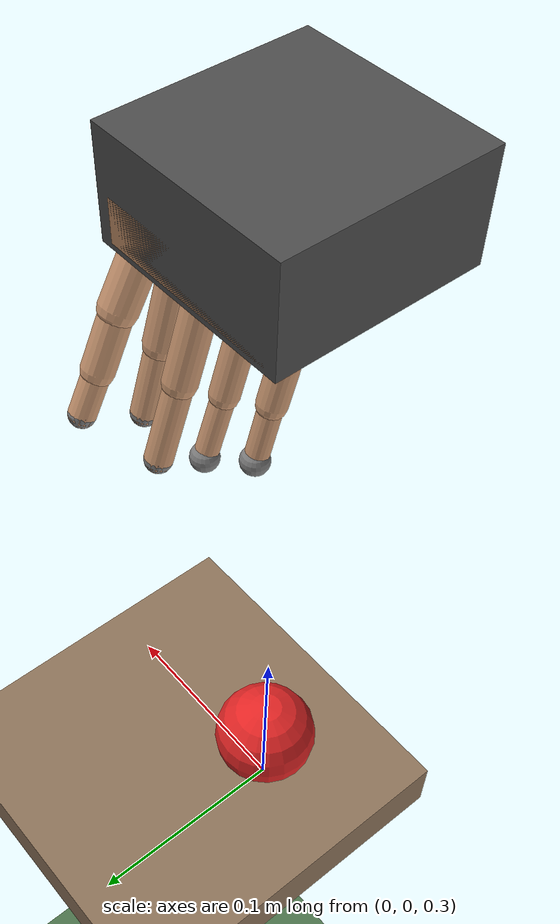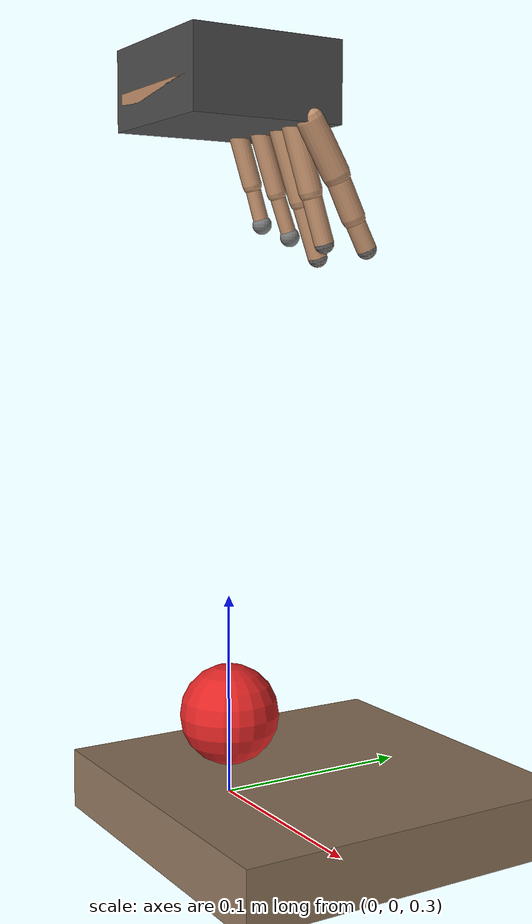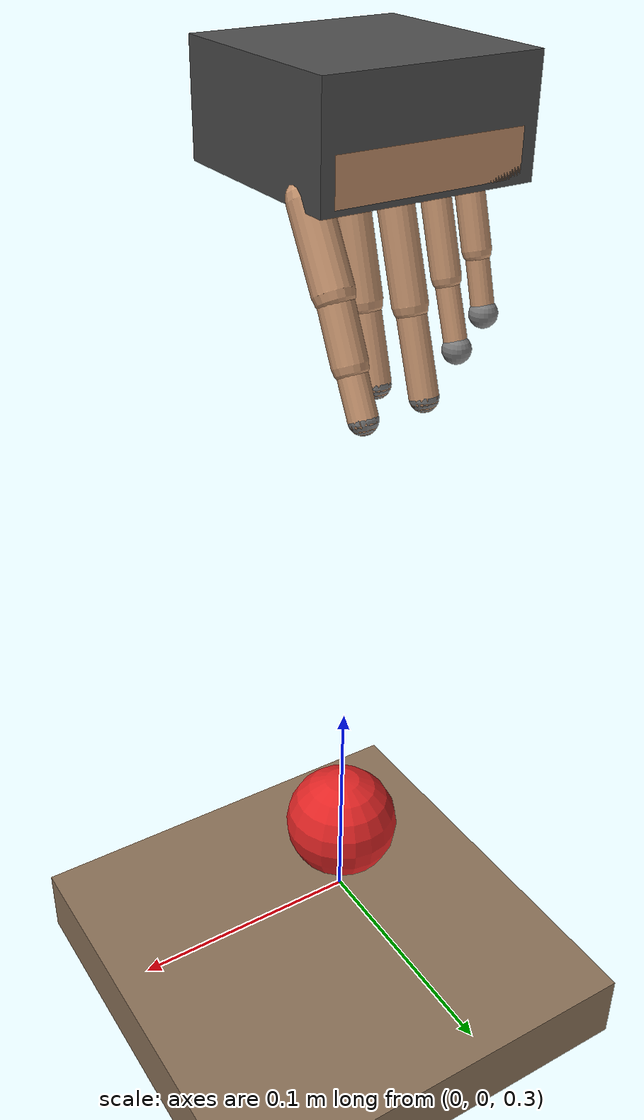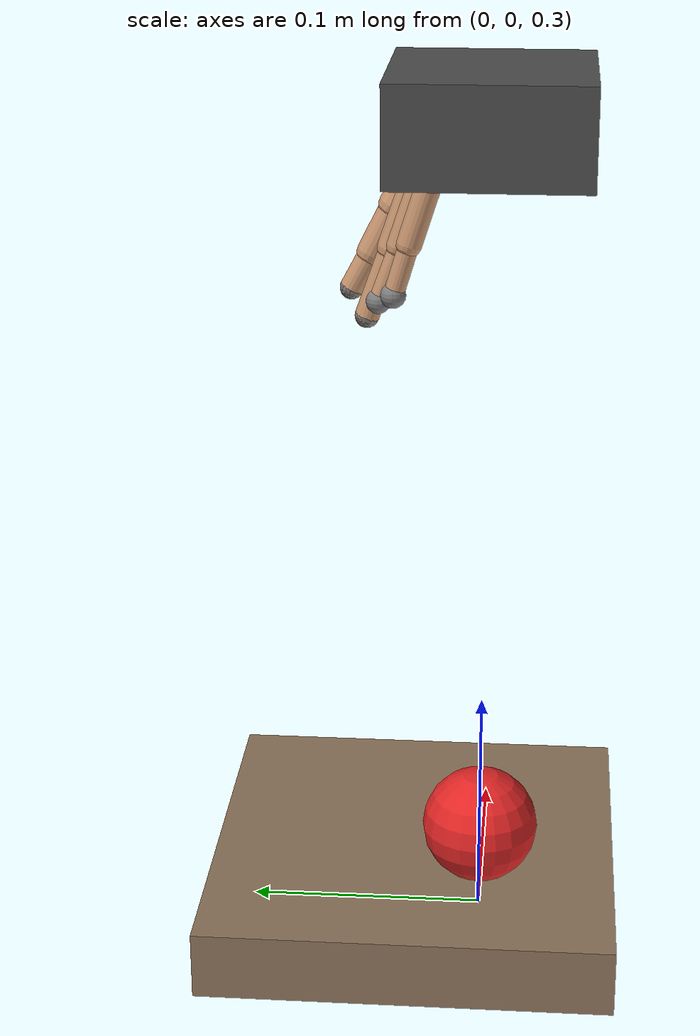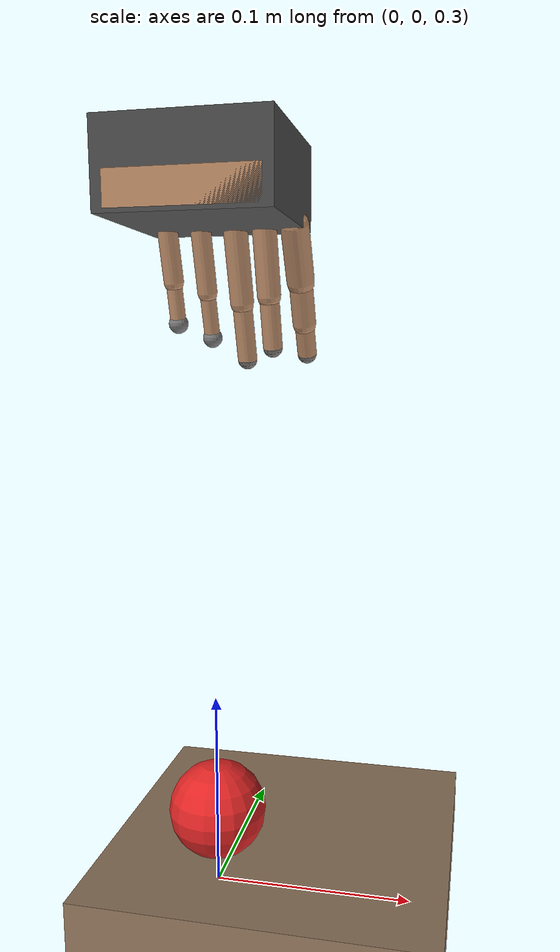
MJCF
<mujoco model="dexhand_v3">
  <compiler angle="radian"/>
  <option timestep="0.002" iterations="30"/>
  <default><geom condim="4" friction="2.0 0.01 0.001"/></default>
  <visual>
    <headlight diffuse="0.7 0.7 0.7" ambient="0.3 0.3 0.3"/>
    <global azimuth="210" elevation="-30" offwidth="1280" offheight="720"/>
  </visual>
  <asset>
    <material name="red" rgba="0.9 0.15 0.15 1"/>
    <material name="blue" rgba="0.15 0.25 0.9 1"/>
    <material name="green" rgba="0.15 0.75 0.25 1"/>
    <material name="yellow" rgba="0.9 0.85 0.15 1"/>
    <material name="purple" rgba="0.55 0.15 0.8 1"/>
    <material name="orange" rgba="0.95 0.55 0.1 1"/>
    <material name="cyan" rgba="0.1 0.8 0.8 1"/>
    <material name="pink" rgba="0.95 0.4 0.7 1"/>
    <material name="brown" rgba="0.55 0.35 0.15 1"/>
    <material name="gray" rgba="0.5 0.5 0.5 1"/>
    <material name="hand" rgba="0.8 0.6 0.45 1"/>
    <material name="palm_mat" rgba="0.75 0.55 0.4 1"/>
  </asset>
  <worldbody>
    <geom name="floor" type="plane" size="2 2 0.01" rgba="0.3 0.45 0.3 1"/>
    <body name="table" pos="0 0 0.3">
      <geom type="box" size="0.5 0.5 0.015" rgba="0.55 0.45 0.35 1" contype="1" conaffinity="1"/>
    </body>
    <!-- 物体 (slide joint, z only) -->
    <body name="obj" pos="0 0 0.34">
      <joint name="obj_z" type="slide" axis="0 0 1" range="-0.34 1.0" damping="0.3"/>
      <geom name="obj_g" type="sphere" size="0.025" material="red" mass="0.05"/>
    </body>
    <!-- 5指灵巧手 + z轴滑轨 -->
    <body name="rail" pos="0 0 0.65">
      <geom type="box" size="0.04 0.04 0.02" rgba="0.3 0.3 0.3 1" contype="0" conaffinity="0"/>
      <body name="arm">
        <joint name="z_slide" type="slide" axis="0 0 -1" range="0 0.30" damping="10"/>
        <geom type="cylinder" size="0.015 0.01" rgba="0.4 0.4 0.4 1" contype="0" conaffinity="0"/>
        <body name="palm" pos="0 0 -0.01">
          <geom name="palm_g" type="box" size="0.035 0.04 0.008" material="palm_mat" contype="2" conaffinity="2"/>
          <!-- 拇指 (右侧) -->
          <body name="thumb_b" pos="0.035 0.025 -0.008">
            <joint name="thumb_j1" type="hinge" axis="0 1 0" range="0 1.5"/>
            <geom type="capsule" fromto="0 0 0 0 0.015 -0.025" size="0.007" material="hand" contype="2" conaffinity="2"/>
            <body name="thumb_m" pos="0 0.015 -0.025">
              <joint name="thumb_j2" type="hinge" axis="0 1 0" range="0 1.2"/>
              <geom type="capsule" fromto="0 0 0 0 0.01 -0.02" size="0.006" material="hand" contype="2" conaffinity="2"/>
              <body name="thumb_t" pos="0 0.01 -0.02">
                <joint name="thumb_j3" type="hinge" axis="0 1 0" range="0 1.0"/>
                <geom type="capsule" fromto="0 0 0 0 0.008 -0.015" size="0.005" material="hand" contype="2" conaffinity="2"/>
                <site name="s_thumb" pos="0 0.008 -0.015"/>
              </body>
            </body>
          </body>
          <!-- 食指 -->
          <body name="f1_b" pos="0.02 0.025 -0.008">
            <joint name="j1" type="hinge" axis="-1 0 0" range="0 2"/>
            <geom type="capsule" fromto="0 0 0 0 0.01 -0.032" size="0.006" material="hand" contype="2" conaffinity="2"/>
            <body name="f1_t" pos="0 0.01 -0.032">
              <joint name="j1t" type="hinge" axis="-1 0 0" range="0 1.8"/>
              <geom type="capsule" fromto="0 0 0 0 0.008 -0.025" size="0.005" material="hand" contype="2" conaffinity="2"/>
              <site name="s1" pos="0 0.008 -0.025"/>
            </body>
          </body>
          <!-- 中指 -->
          <body name="f2_b" pos="0.005 0.027 -0.008">
            <joint name="j2" type="hinge" axis="-1 0 0" range="0 2"/>
            <geom type="capsule" fromto="0 0 0 0 0.012 -0.035" size="0.006" material="hand" contype="2" conaffinity="2"/>
            <body name="f2_t" pos="0 0.012 -0.035">
              <joint name="j2t" type="hinge" axis="-1 0 0" range="0 1.8"/>
              <geom type="capsule" fromto="0 0 0 0 0.01 -0.028" size="0.005" material="hand" contype="2" conaffinity="2"/>
              <site name="s2" pos="0 0.01 -0.028"/>
            </body>
          </body>
          <!-- 无名指 -->
          <body name="f3_b" pos="-0.012 0.025 -0.008">
            <joint name="j3" type="hinge" axis="-1 0 0" range="0 2"/>
            <geom type="capsule" fromto="0 0 0 0 0.01 -0.03" size="0.005" material="hand" contype="2" conaffinity="2"/>
            <body name="f3_t" pos="0 0.01 -0.03">
              <joint name="j3t" type="hinge" axis="-1 0 0" range="0 1.8"/>
              <geom type="capsule" fromto="0 0 0 0 0.008 -0.022" size="0.004" material="hand" contype="2" conaffinity="2"/>
              <site name="s3" pos="0 0.008 -0.022"/>
            </body>
          </body>
          <!-- 小指 -->
          <body name="f4_b" pos="-0.028 0.022 -0.008">
            <joint name="j4" type="hinge" axis="-1 0 0" range="0 2"/>
            <geom type="capsule" fromto="0 0 0 0 0.008 -0.025" size="0.005" material="hand" contype="2" conaffinity="2"/>
            <body name="f4_t" pos="0 0.008 -0.025">
              <joint name="j4t" type="hinge" axis="-1 0 0" range="0 1.8"/>
              <geom type="capsule" fromto="0 0 0 0 0.006 -0.02" size="0.004" material="hand" contype="2" conaffinity="2"/>
              <site name="s4" pos="0 0.006 -0.02"/>
            </body>
          </body>
        </body>
      </body>
    </body>
  </worldbody>
  <sensor>
    <touch name="t_thumb" site="s_thumb"/>
    <touch name="t1" site="s1"/>
    <touch name="t2" site="s2"/>
    <touch name="t3" site="s3"/>
    <touch name="t4" site="s4"/>
  </sensor>
  <actuator>
    <position name="az" joint="z_slide" kp="800" kv="80"/>
    <position name="a_thumb1" joint="thumb_j1" kp="150" kv="15"/>
    <position name="a_thumb2" joint="thumb_j2" kp="120" kv="12"/>
    <position name="a_thumb3" joint="thumb_j3" kp="100" kv="10"/>
    <position name="a1" joint="j1" kp="150" kv="15"/>
    <position name="a1t" joint="j1t" kp="120" kv="12"/>
    <position name="a2" joint="j2" kp="150" kv="15"/>
    <position name="a2t" joint="j2t" kp="120" kv="12"/>
    <position name="a3" joint="j3" kp="150" kv="15"/>
    <position name="a3t" joint="j3t" kp="120" kv="12"/>
    <position name="a4" joint="j4" kp="150" kv="15"/>
    <position name="a4t" joint="j4t" kp="120" kv="12"/>
  </actuator>
</mujoco>
